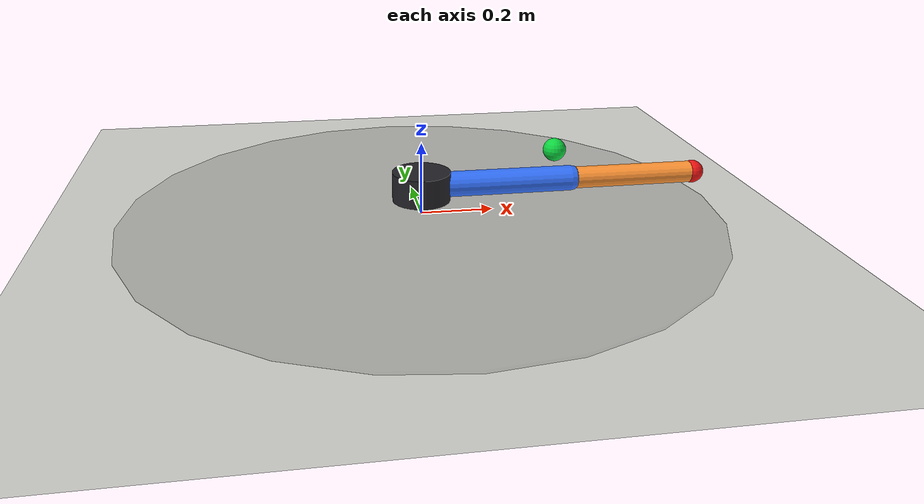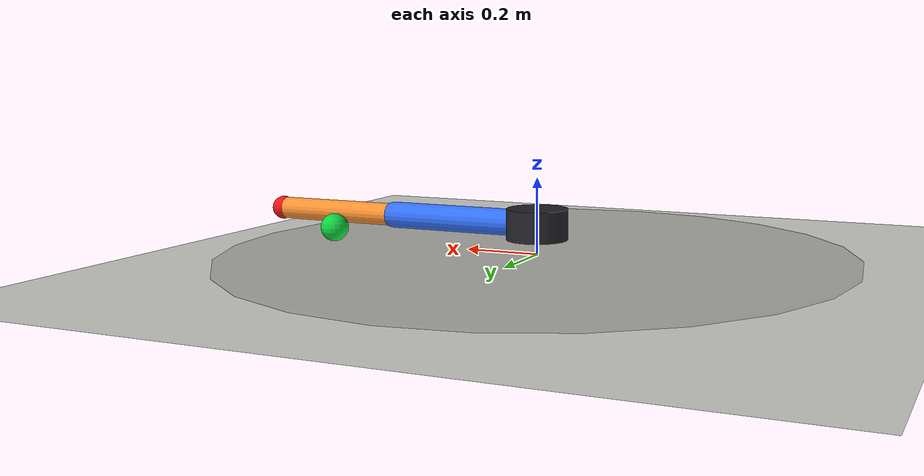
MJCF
<mujoco model="two_link_arm_reach">
  <compiler angle="radian"/>

  <option timestep="0.002" gravity="0 0 0"/>

  <default>
    <joint damping="0.25" armature="0.02"/>
    <geom friction="1 0.005 0.0001" contype="0" conaffinity="0"/>
  </default>

  <worldbody>
    <light pos="0 0 2.5" dir="0 0 -1"/>

    <geom
      name="table"
      type="plane"
      pos="0 0 -0.02"
      size="1.2 1.2 0.02"
      rgba="0.84 0.84 0.82 1"/>

    <geom
      name="workspace"
      type="cylinder"
      pos="0 0 0.0"
      size="0.82 0.004"
      rgba="0.18 0.18 0.18 0.18"
      contype="0"
      conaffinity="0"/>

    <site
      name="target_site"
      type="sphere"
      pos="0.45 0.25 0.08"
      size="0.035"
      rgba="0.05 0.85 0.25 1"/>

    <body name="base" pos="0 0 0.08">
      <geom
        name="base_geom"
        type="cylinder"
        size="0.08 0.04"
        rgba="0.14 0.14 0.16 1"/>

      <body name="upper_arm" pos="0 0 0">
        <joint
          name="shoulder"
          type="hinge"
          axis="0 0 1"
          limited="false"/>
        <geom
          name="upper_arm_geom"
          type="capsule"
          fromto="0 0 0 0.42 0 0"
          size="0.035"
          mass="0.5"
          rgba="0.20 0.45 1.0 1"/>

        <body name="forearm" pos="0.42 0 0">
          <joint
            name="elbow"
            type="hinge"
            axis="0 0 1"
            limited="false"/>
          <geom
            name="forearm_geom"
            type="capsule"
            fromto="0 0 0 0.36 0 0"
            size="0.030"
            mass="0.35"
            rgba="1.0 0.58 0.20 1"/>
          <site
            name="end_effector"
            type="sphere"
            pos="0.36 0 0"
            size="0.032"
            rgba="0.95 0.08 0.08 1"/>
        </body>
      </body>
    </body>
  </worldbody>

  <actuator>
    <motor
      name="shoulder_motor"
      joint="shoulder"
      gear="1"
      ctrllimited="true"
      ctrlrange="-3 3"/>
    <motor
      name="elbow_motor"
      joint="elbow"
      gear="1"
      ctrllimited="true"
      ctrlrange="-3 3"/>
  </actuator>
</mujoco>
